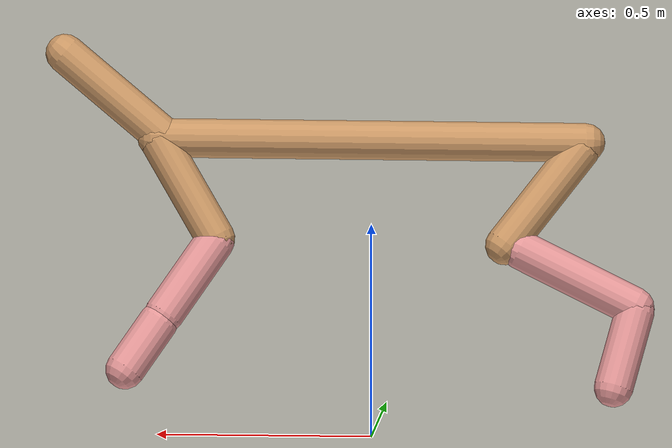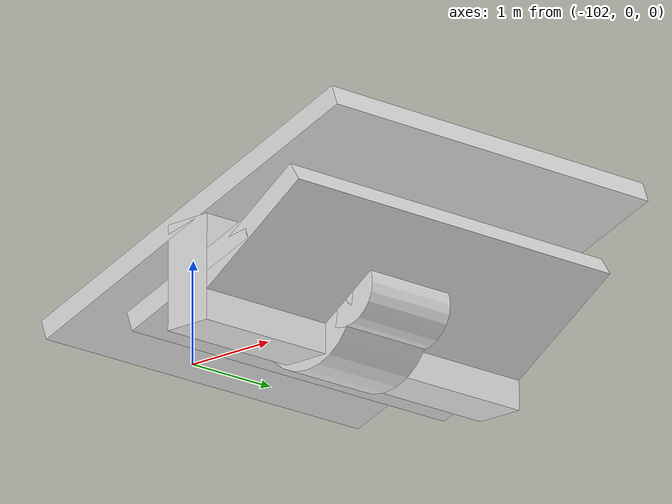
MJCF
<mujoco model="cheetah">
  <compiler angle="radian" coordinate="local" inertiafromgeom="true" settotalmass="14"/>
  <default>
    <joint armature=".1" damping=".01" limited="true" solimplimit="0 .8 .03" solreflimit=".02 1" stiffness="8"/>
    <geom conaffinity="0" condim="3" contype="1" friction=".4 .1 .1" rgba="0.8 0.6 .4 1" solimp="0.0 0.8 0.01" solref="0.02 1"/>
    <motor ctrllimited="true" ctrlrange="-1 1"/>
  </default>
  <size nstack="300000" nuser_geom="1"/>
  <option gravity="0 0 -9.81" timestep="0.01"/>

  <worldbody>
    <light cutoff="100" diffuse="1 1 1" dir="-0 0 -1.3" directional="true" exponent="1" pos="0 0 1.3" specular=".1 .1 .1"/>
    <body name="torso" pos="0 0 .7">
      <camera name="track" mode="trackcom" pos="0 -5 0.25" xyaxes="1 0 0 0 0 1"/>
      <joint armature="0" axis="1 0 0" damping="0" limited="false" name="rootx" pos="0 0 0" stiffness="0" type="slide"/>
      <joint armature="0" axis="0 0 1" damping="0" limited="false" name="rootz" pos="0 0 0" stiffness="0" type="slide"/>
      <joint armature="0" axis="0 1 0" damping="0" limited="false" name="rooty" pos="0 0 0" stiffness="0" type="hinge"/>
      <geom fromto="-.5 0 0 .5 0 0" name="torso" size="0.046" type="capsule"/>
      <geom axisangle="0 1 0 .87" name="head" pos=".6 0 .1" size="0.046 .15" type="capsule"/>
      <body name="bthigh" pos="-.5 0 0">
        <joint axis="0 1 0" damping="6" name="bthigh" pos="0 0 0" range="-.52 1.05" stiffness="240" type="hinge"/>
        <geom axisangle="0 1 0 -3.8" name="bthigh" pos=".1 0 -.13" size="0.046 .145" type="capsule"/>
        <body name="bshin" pos=".16 0 -.25">
          <joint axis="0 1 0" damping="4.5" name="bshin" pos="0 0 0" range="-.785 .785" stiffness="180" type="hinge"/>
          <geom axisangle="0 1 0 -2.03" name="bshin" pos="-.14 0 -.07" rgba="0.9 0.6 0.6 1" size="0.046 .15" type="capsule"/>
          <body name="bfoot" pos="-.28 0 -.14">
            <joint axis="0 1 0" damping="3" name="bfoot" pos="0 0 0" range="-.4 .785" stiffness="120" type="hinge"/>
            <geom axisangle="0 1 0 -.27" name="bfoot" pos=".03 0 -.097" rgba="0.9 0.6 0.6 1" size="0.046 .094" type="capsule"/>
          </body>
        </body>
      </body>
      <body name="fthigh" pos=".5 0 0">
        <joint axis="0 1 0" damping="4.5" name="fthigh" pos="0 0 0" range="-1 .7" stiffness="180" type="hinge"/>
        <geom axisangle="0 1 0 .52" name="fthigh" pos="-.07 0 -.12" size="0.046 .133" type="capsule"/>
        <body name="fshin" pos="-.14 0 -.24">
          <joint axis="0 1 0" damping="3" name="fshin" pos="0 0 0" range="-1.2 .87" stiffness="120" type="hinge"/>
          <geom axisangle="0 1 0 -.6" name="fshin" pos=".065 0 -.09" rgba="0.9 0.6 0.6 1" size="0.046 .106" type="capsule"/>
          <body name="ffoot" pos=".13 0 -.18">
            <joint axis="0 1 0" damping="1.5" name="ffoot" pos="0 0 0" range="-.5 .5" stiffness="60" type="hinge"/>
            <geom axisangle="0 1 0 -.6" name="ffoot" pos=".045 0 -.07" rgba="0.9 0.6 0.6 1" size="0.046 .07" type="capsule"/>
          </body>
        </body>
      </body>
    </body>

    <body name="obstacle0" pos="-100 0 0">
      <geom name="obstacle0_geom" pos="0 0 0" mass = "0.0"
            type="box" size="0.25 2 0.5"
            rgba="0.9 0.9 0.9 1"
            contype="1" conaffinity="1"/>
    </body>
    <body name="obstacle0-ground" pos="-100 0 0">
      <geom name="obstacle0-ground" pos="0 0 0" mass = "0.0"
            type="box" size="0.25 2 0.5"
            rgba="0.9 0.9 0.9 1"
            contype="1" conaffinity="1"/>
    </body>

    <body name="obstacle1" pos="-100 0 0">
      <geom name="obstacle1_geom" pos="0 0 0" mass="0.0"
            type="cylinder" size="0.6 0.5"
            rgba="0.9 0.9 0.9 1"
            contype="1" conaffinity="1"
            axisangle="1 0 0 1.5708"/> <!-- rotation 90° autour de X -->
    </body>

    <body name="obstacle2-a" pos="-100 0 -0.13">   <!-- z centré pour toucher le sol -->
      <geom name="obstacle2-a_geom" pos="0 0 0.1" mass="0"
            type="box" size="0.8 2.0 0.1"
            rgba="0.9 0.9 0.9 1"
            contype="1" conaffinity="1"
            euler="0 -0.349066 0"/>             <!-- 20° = 0.349066 rad -->
    </body>
    <body name="obstacle2-b" pos="-100 0 -0.13">   <!-- z centré pour toucher le sol -->
      <geom name="obstacle2-b_geom" pos="0.7 0 0.33" mass="0"
            type="box" size="0.8 2.0 0.1"
            rgba="0.9 0.9 0.9 1"
            contype="1" conaffinity="1"
            euler="0 -0.575959 0"/>            <!-- 20° = 0.349066 rad -->
    </body>

    <body name="obstacle3-a" pos="-100 0 0.05">
      <geom name="obstacle3-a_geom" pos="-0.5 0 0" mass="0.0"
            type="cylinder" size="0.35 0.5"
            rgba="0.9 0.9 0.9 1"
            contype="1" conaffinity="1"
            axisangle="1 0 0 1.5708"/> <!-- rotation 90° autour de X -->
    </body>
    <body name="obstacle3-b" pos="-100 0 0.05">
      <geom name="obstacle3-b_geom" pos="0.5 0 0" mass="0.0"
            type="cylinder" size="0.35 0.5"
            rgba="0.9 0.9 0.9 1"
            contype="1" conaffinity="1"
            axisangle="1 0 0 1.5708"/> <!-- rotation 90° autour de X -->
    </body>

    <body name="obstacle4" pos="-100 0 0.0">   <!-- z centré pour toucher le sol -->
      <geom name="obstacle4-geom" pos="0 0 0.55" mass="0"
            type="box" size="2 2.0 0.1"
            rgba="0.9 0.9 0.9 1"
            contype="1" conaffinity="1"
            friction="0.8 0.1 0.1"
            euler="0 -0.349066 0"/>            <!-- 20° = 0.349066 rad -->
    </body>

  </worldbody>
  <actuator>
    <motor gear="120" joint="bthigh" name="bthigh"/>
    <motor gear="90" joint="bshin" name="bshin"/>
    <motor gear="60" joint="bfoot" name="bfoot"/>
    <motor gear="120" joint="fthigh" name="fthigh"/>
    <motor gear="60" joint="fshin" name="fshin"/>
    <motor gear="30" joint="ffoot" name="ffoot"/>
  </actuator>
</mujoco>
